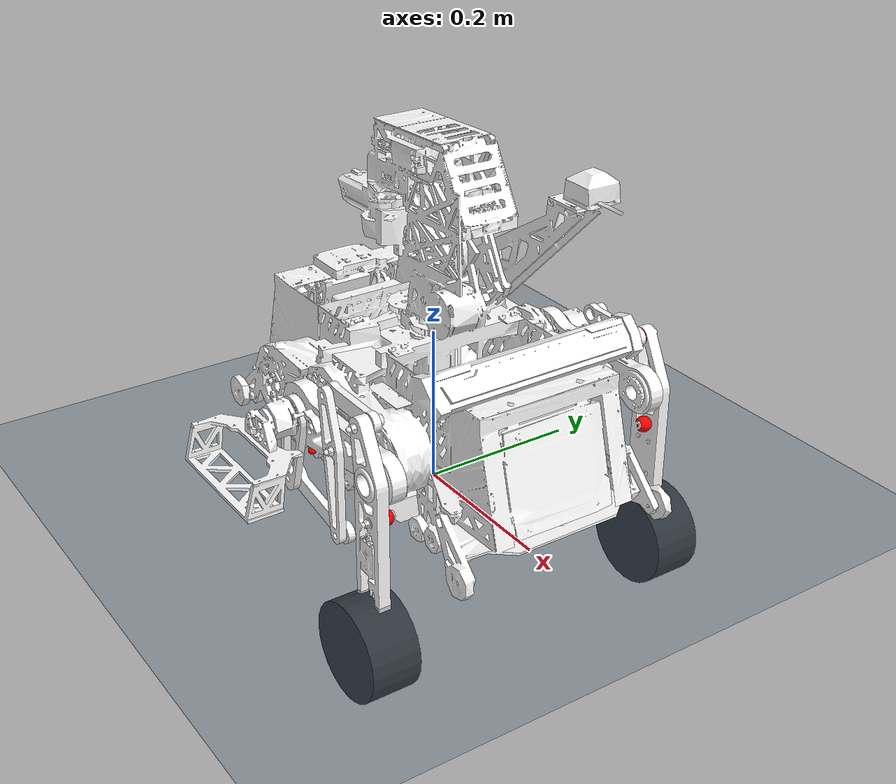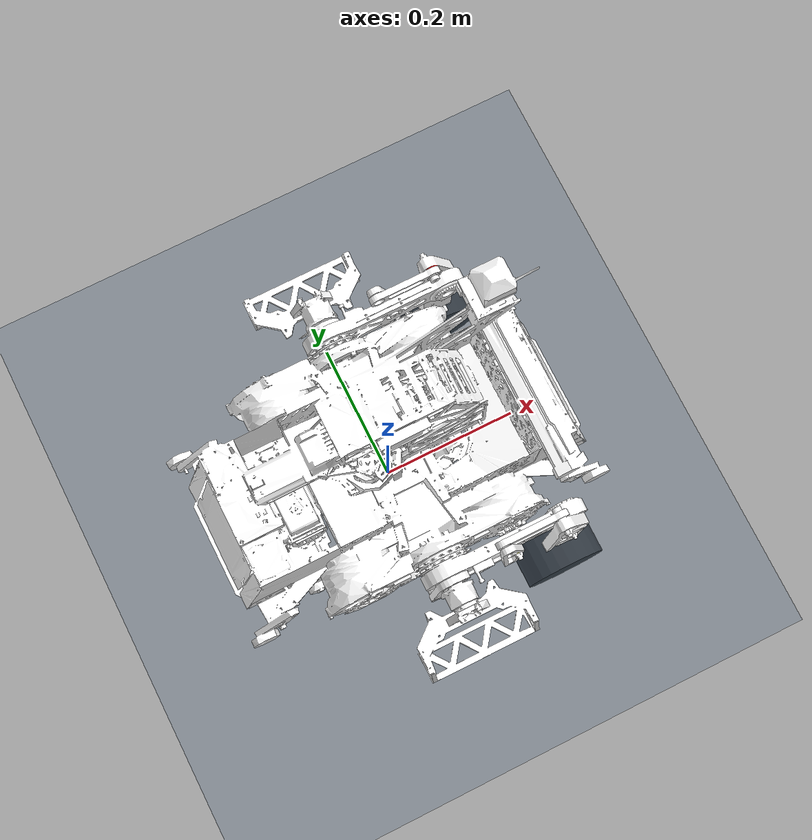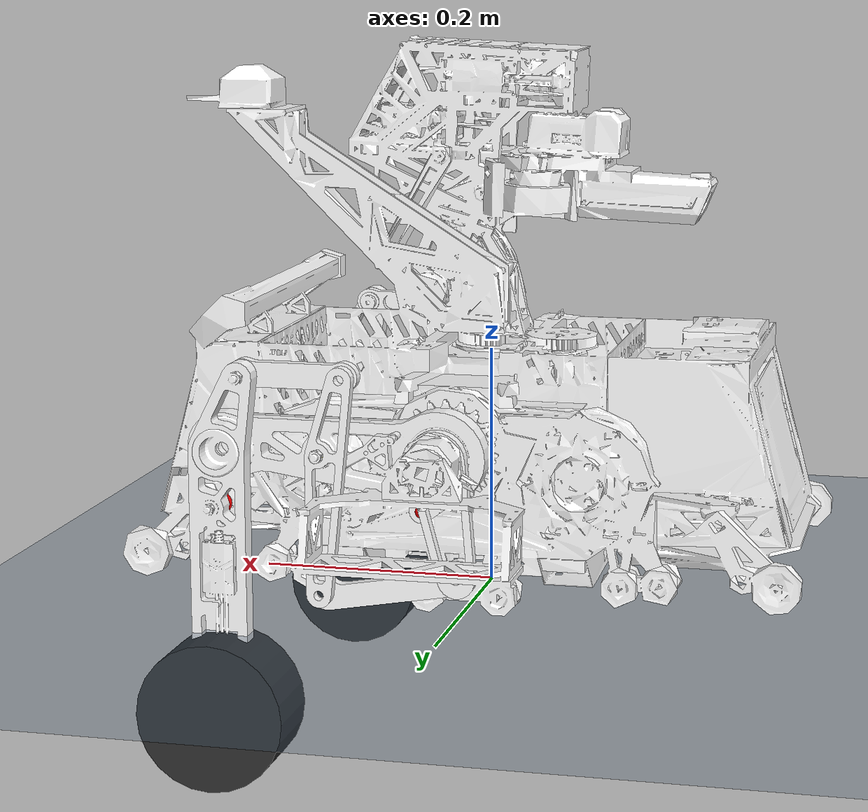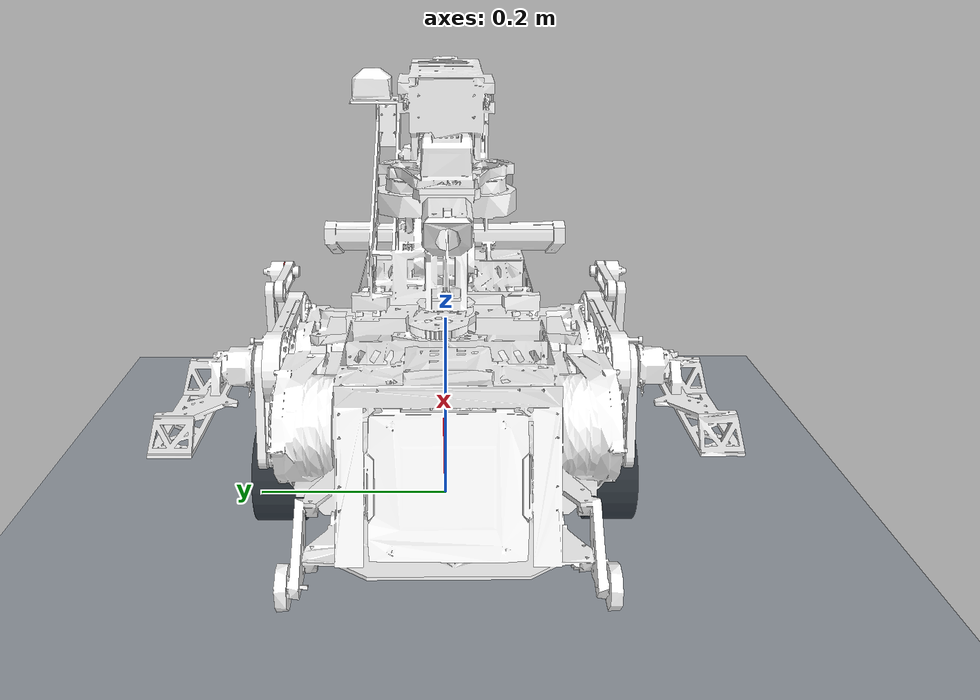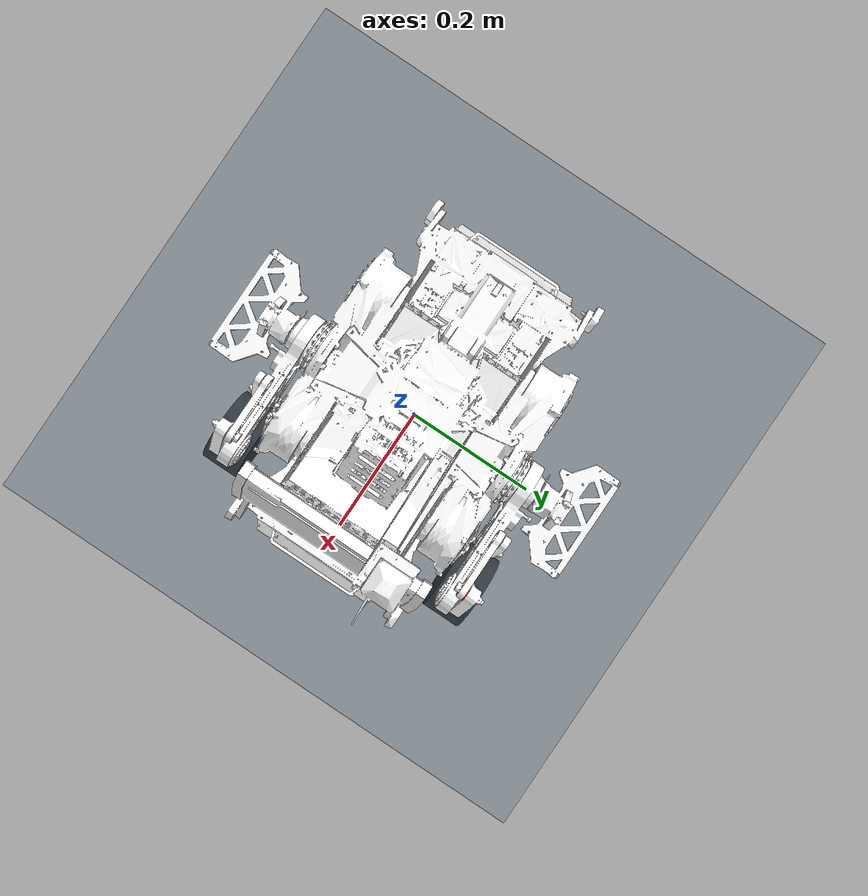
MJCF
<mujoco model="infantry_scene">
  <!-- Standalone test scene: the RL robot on flat ground.
       mjlab supplies its own terrain, so infantry.xml has no floor.
       This wrapper exists only for local physics checks / viewing. -->
  <include file="infantry.xml"/>
  <statistic center="0 0 0.2" extent="1.2"/>
  <visual>
    <headlight diffuse="0.6 0.6 0.6" ambient="0.3 0.3 0.3"/>
    <rgba haze="0.15 0.25 0.35 1"/>
  </visual>
  <asset>
    <texture name="grid_tex" type="2d" builtin="checker" width="512" height="512"
             rgb1="0.2 0.3 0.4" rgb2="0.3 0.4 0.5"/>
    <material name="grid_mat" texture="grid_tex" texrepeat="12 12" reflectance="0.1"/>
  </asset>
  <worldbody>
    <light pos="0 0 3" dir="0 0 -1" directional="true"/>
    <geom name="floor" type="plane" size="20 20 0.1" material="grid_mat"
          condim="6" priority="1" friction="1.2 0.02 0.001"
          contype="2" conaffinity="1"/>
  </worldbody>
</mujoco>

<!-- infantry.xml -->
<mujoco model="infantry_v4">
  <compiler angle="radian" meshdir="../../../infantry_V4/meshes" autolimits="true" />
  <option timestep="0.001" integrator="implicitfast" solver="Newton" iterations="150" ls_iterations="50" tolerance="1e-10" />
  <default>
    <geom contype="1" conaffinity="2" />
  </default>
  <asset>
    <mesh name="base_Link_del" file="base_link_del.STL" />
    <mesh name="rf0_Link" file="rf0_Link.STL" />
    <mesh name="rf1_Link" file="rf1_Link.STL" />
    <mesh name="r_wheel_Link" file="r_wheel_Link.STL" />
    <mesh name="lf0_Link" file="lf0_Link.STL" />
    <mesh name="lf1_Link" file="lf1_Link.STL" />
    <mesh name="l_wheel_Link" file="l_wheel_Link.STL" />
    <mesh name="r20_Link" file="r20_Link.STL" />
    <mesh name="r21_Link" file="r21_Link.STL" />
    <mesh name="r22_Link" file="r22_Link.STL" />
    <mesh name="r23_Link" file="r23_Link.STL" />
    <mesh name="l20_Link" file="l20_Link.STL" />
    <mesh name="l21_Link" file="l21_Link.STL" />
    <mesh name="l22_Link" file="l22_Link.STL" />
    <mesh name="l23_Link" file="l23_Link.STL" />
  </asset>
  <worldbody>
    <body name="base_Link_del" pos="0 0 0.0592" quat="1 0 0 0">
      <freejoint />
      <inertial pos="-0.00406060 0.0008523 0.09714204" mass="14.528116" fullinertia="0.28353 0.35249 0.3701 -0.00174358 -0.00825907 -0.00214156" />
      <site name="imu_site" pos="0 0 0" size="0.005" />
      <camera name="follow_cam" pos="0 0 0.45" xyaxes="0 1 0 0 0 1" fovy="55" />
      <geom name="base_Link_del_geom" type="mesh" rgba="1 1 1 1" mesh="base_Link_del" priority="2" condim="1" friction="0 0 0" />
      <body name="rf0_Link" pos="0 -0.1877 0.08725" quat="0.707105 0.707108 0 0">
        <inertial pos="0.0552763 -0.0165544 -0.00927161" quat="-0.005176 0.693173 0.0544357 0.718694" mass="1.1132" diaginertia="0.00641833 0.00468513 0.00204569" />
        <joint name="rf0_Joint" pos="0 0 0" axis="0 0 1" armature="0.01" range="-100 100" actuatorfrcrange="-30 30" ref="0.248719" damping="0.2" />
        <geom type="mesh" rgba="1 1 1 1" mesh="rf0_Link" />
        <site name="Right_front_site1" pos="0.09435 0 0" size="0.005" rgba="1 0 0 1" />
        <site name="right_lf0_qitanhuang" pos="0.0155 -0.0445 -0.008" size="0.005" rgba="1 0 0 1" />
        <body name="rf1_Link" pos="0.17472 0 0">
          <inertial pos="-0.00283459 -0.0710676 0.0068255" quat="0.483182 0.50274 -0.490133 0.523027" mass="0.306873" diaginertia="0.0025405 0.00248016 8.5602e-05" />
          <joint name="rf1_Joint" pos="0 0 0" axis="0 0 1" armature="0.01" range="-1.1 0.63" actuatorfrcrange="-30 30" ref="0.630808" damping="0.2" />
          <geom type="mesh" rgba="1 1 1 1" mesh="rf1_Link" />
          <site name="Right_front_site2" pos="-0.0160931 0.0609099 0" size="0.005" rgba="1 0 0 1" />
          <site name="right_lf1_qitanhuang" pos="0.005 -0.046 -0.005" size="0.01" rgba="1 0 0 1" />
          <body name="r_wheel_Link" pos="0 -0.208 0.016">
            <inertial pos="4.1184e-06 -0.00019289 0.019562" mass="0.4904" fullinertia="0.00033958 0.00034133 0.0005817 0 0 0" />
            <joint name="r_wheel_Joint" pos="0 0 0" axis="0 0 1" actuatorfrcrange="-30 30" armature="0.005" damping="0.05" />
            <geom name="r_wheel_Link_collision" type="cylinder" size="0.06 0.03075" rgba="0.18 0.18 0.18 1" condim="6" priority="2" friction="1.2 0.02 0.001" contype="1" conaffinity="2" />
          </body>
        </body>
      </body>
      <body name="lf0_Link" pos="0 0.1877 0.08725" quat="0.707105 -0.707108 0 0">
        <inertial pos="0.055403 0.016584 -0.0092702" quat="0.00463484 0.693099 -0.0538381 0.718814" mass="1.1128" diaginertia="0.00641157 0.0046755 0.00204815" />
        <joint name="lf0_Joint" pos="0 0 0" axis="0 0 1" armature="0.01" range="-100 100" actuatorfrcrange="-30 30" ref="-0.251019" damping="0.2" />
        <geom type="mesh" rgba="1 1 1 1" mesh="lf0_Link" />
        <site name="Left_front_site1" pos="0.09435 0 0" size="0.005" rgba="1 0 0 1" />
        <site name="left_lf0_qitanhuang" pos="0.0155 0.0445 -0.008" size="0.005" rgba="1 0 0 1" />
        <body name="lf1_Link" pos="0.17472 0 0">
          <inertial pos="-0.0028358 0.071068 0.0068255" quat="0.50274 0.483182 -0.523027 0.490133" mass="0.30687" diaginertia="0.0025405 0.00248016 8.5602e-05" />
          <joint name="lf1_Joint" pos="0 0 0" axis="0 0 1" armature="0.01" range="-0.63 1.1" actuatorfrcrange="-30 30" ref="-0.630836" damping="0.2" />
          <geom type="mesh" rgba="1 1 1 1" mesh="lf1_Link" />
          <site name="Left_front_site2" pos="-0.0160931 -0.0609099 0" size="0.01" rgba="1 0 0 1" />
          <site name="left_lf1_qitanhuang" pos="0.005 0.046 -0.005" size="0.01" rgba="1 0 0 1" />
          <body name="l_wheel_Link" pos="0 0.208 0.016">
            <inertial pos="-4.1184e-06 0.00019289 0.019562" mass="0.4904" fullinertia="0.00033958 0.00034133 0.0005817 0 0 0" />
            <joint name="l_wheel_Joint" pos="0 0 0" axis="0 0 1" actuatorfrcrange="-30 30" armature="0.005" damping="0.05" />
            <geom name="l_wheel_Link_collision" type="cylinder" size="0.06 0.03075" rgba="0.18 0.18 0.18 1" condim="6" priority="2" friction="1.2 0.02 0.001" contype="1" conaffinity="2" />
          </body>
        </body>
      </body>
      <body name="r20_Link" pos="0 -0.1877 0.08725" quat="0.707105 0.707108 0 0">
        <inertial pos="-0.0077129 -0.044014 0.0053168" quat="0.54287 0.453598 -0.539995 0.456012" mass="0.058433" diaginertia="0.000101653 9.09634e-05 1.15321e-05" />
        <joint name="r20_Joint" pos="0 0 0" axis="0 0 1" armature="0.01" actuatorfrcrange="-30 30" ref="0.929072" damping="0.2" />
        <geom type="mesh" rgba="1 1 1 1" mesh="r20_Link" />
        <body name="r21_Link" pos="-0.016285 -0.092933 0.01">
          <inertial pos="0.05374 -0.013258 -0.01451" quat="0.0690441 0.704772 -0.0560118 0.70384" mass="0.042999" diaginertia="7.83158e-05 7.61359e-05 2.77956e-06" />
          <joint name="r21_Link" pos="0 0 0" axis="0 0 1" actuatorfrcrange="-30 30" ref="-0.598717" armature="0.01" damping="0.2" />
          <geom type="mesh" rgba="1 1 1 1" mesh="r21_Link" />
          <body name="r22_Link" pos="0.11063 -0.019387 0">
            <inertial pos="-0.006381 0.08888 -0.0045" quat="0.475753 0.523125 -0.475753 0.523125" mass="0.065877" diaginertia="0.00021104 0.000205523 6.41108e-06" />
            <joint name="r22_Joint" pos="0 0 0" axis="0 0 1" actuatorfrcrange="-30 30" ref="0.517027" armature="0.01" damping="0.2" />
            <geom type="mesh" rgba="1 1 1 1" mesh="r22_Link" />
            <site name="Right_rear_site1" pos="0 0.11232 0" size="0.005" rgba="1 1 0 1" />
            <body name="r23_Link" pos="-0.018032 0.17268 0">
              <inertial pos="0.040186 0 -0.014509" quat="0 0.707107 0 0.707107" mass="0.010945" diaginertia="1.0337e-05 9.8695e-06 6.2034e-07" />
              <joint name="r23_Joint" pos="0 0 0" axis="0 0 1" actuatorfrcrange="-30 30" ref="-0.598714" armature="0.01" damping="0.2" />
              <geom type="mesh" rgba="1 1 1 1" mesh="r23_Link" />
              <site name="Right_rear_site2" pos="0.08037 0 0" size="0.005" rgba="1 1 0 1" />
            </body>
          </body>
        </body>
      </body>
      <body name="l20_Link" pos="0 0.1877 0.08725" quat="0.707105 -0.707108 0 0">
        <inertial pos="-0.0077129 -0.044014 0.0053168" quat="-0.066476 0.705194 0.0534809 0.703863" mass="0.058433" diaginertia="7.83158e-05 7.61355e-05 2.77958e-06" />
        <joint name="l20_Joint" pos="0 0 0" axis="0 0 1" armature="0.01" actuatorfrcrange="-30 30" ref="-0.931625" damping="0.2" />
        <geom type="mesh" rgba="1 1 1 1" mesh="l20_Link" />
        <body name="l21_Link" pos="-0.016285 0.092933 0.01">
          <inertial pos="0.055588 0.013582 -0.01451" quat="-0.066476 0.705194 0.0534809 0.703863" mass="0.042999" diaginertia="7.83158e-05 7.61355e-05 2.77958e-06" />
          <joint name="l21_Joint" pos="0 0 0" axis="0 0 1" actuatorfrcrange="-30 30" ref="0.598961" armature="0.01" damping="0.2" />
          <geom type="mesh" rgba="1 1 1 1" mesh="l21_Link" />
          <body name="l22_Link" pos="0.11063 0.019387 0">
            <inertial pos="-0.006381 -0.08888 -0.0045" quat="0.523125 0.475753 -0.523125 0.475753" mass="0.065877" diaginertia="0.00021104 0.000205523 6.41108e-06" />
            <joint name="l22_Joint" pos="0 0 0" axis="0 0 1" actuatorfrcrange="-30 30" ref="-0.517228" armature="0.01" damping="0.2" />
            <geom type="mesh" rgba="1 1 1 1" mesh="l22_Link" />
            <site name="Left_rear_site1" pos="0 -0.11232 0" size="0.005" rgba="1 1 0 1" />
            <body name="l23_Link" pos="-0.018032 -0.17268 0">
              <inertial pos="0.040186 0 -0.014509" quat="0 0.707107 0 0.707107" mass="0.010945" diaginertia="1.0337e-05 9.8695e-06 6.2034e-07" />
              <joint name="l23_Joint" pos="0 0 0" axis="0 0 1" actuatorfrcrange="-30 30" ref="0.598813" armature="0.01" damping="0.2" />
              <geom type="mesh" rgba="1 1 1 1" mesh="l23_Link" />
              <site name="Left_rear_site2" pos="0.08037 0 0" size="0.005" rgba="1 1 0 1" />
            </body>
          </body>
        </body>
      </body>
    </body>
  </worldbody>
  <equality>
    <connect name="Left_loop1" site1="Left_front_site1" site2="Left_rear_site1" solref="0.001 1" solimp="0.99 0.99 0.01 0.5 2" />
    <connect name="Left_loop2" site1="Left_front_site2" site2="Left_rear_site2" solref="0.001 1" solimp="0.99 0.99 0.01 0.5 2" />
    <connect name="Right_loop1" site1="Right_front_site1" site2="Right_rear_site1" solref="0.001 1" solimp="0.99 0.99 0.01 0.5 2" />
    <connect name="Right_loop2" site1="Right_front_site2" site2="Right_rear_site2" solref="0.001 1" solimp="0.99 0.99 0.01 0.5 2" />
  </equality>
  <actuator>
    <position name="act_lf0_Joint" joint="lf0_Joint" kp="180.0" kv="6.0" forcerange="-60.0 60.0" />
    <position name="act_l20_Joint" joint="l20_Joint" kp="180.0" kv="6.0" forcerange="-60.0 60.0" />
    <position name="act_rf0_Joint" joint="rf0_Joint" kp="180.0" kv="6.0" forcerange="-60.0 60.0" />
    <position name="act_r20_Joint" joint="r20_Joint" kp="180.0" kv="6.0" forcerange="-60.0 60.0" />
    <motor name="act_l_wheel_Joint" joint="l_wheel_Joint" gear="1" forcerange="-30.0 30.0" />
    <motor name="act_r_wheel_Joint" joint="r_wheel_Joint" gear="1" forcerange="-30.0 30.0" />
  </actuator>
  <sensor>
    <gyro name="imu_ang_vel" site="imu_site" />
    <velocimeter name="imu_lin_vel" site="imu_site" />
    <accelerometer name="imu_lin_acc" site="imu_site" />
    <subtreeangmom name="root_angmom" body="base_Link_del" />
  </sensor>
  <keyframe>
    <key name="home" qpos="0.000000 0.000000 0.059200 1.000000 0.000000 0.000000 0.000000 0.248719 0.630808 0.000000 -0.251019 -0.630836 0.000000 0.929072 -0.598717 0.517027 -0.598714 -0.931625 0.598961 -0.517228 0.598813" />
  </keyframe>
</mujoco>
